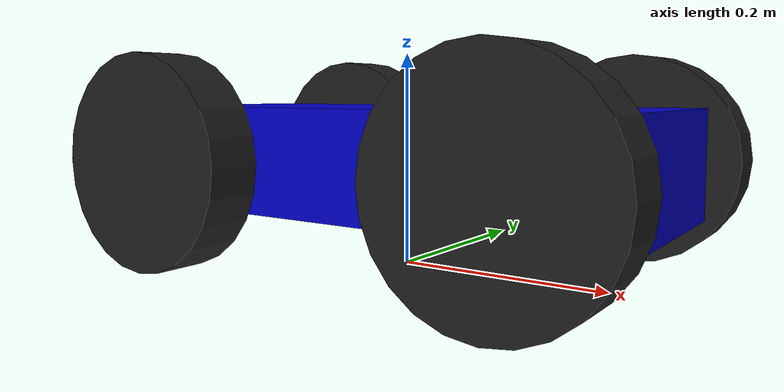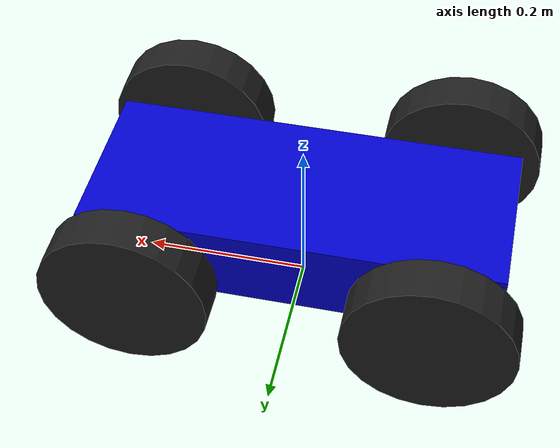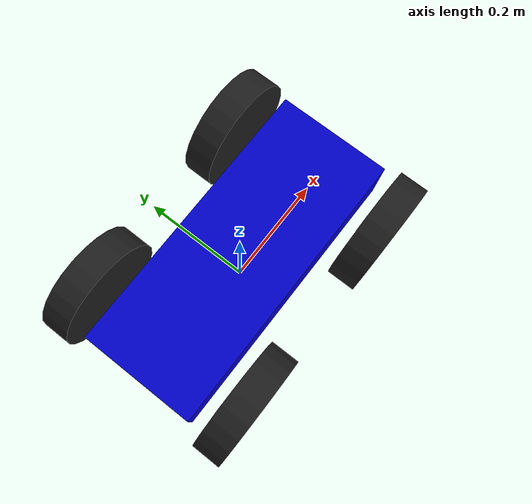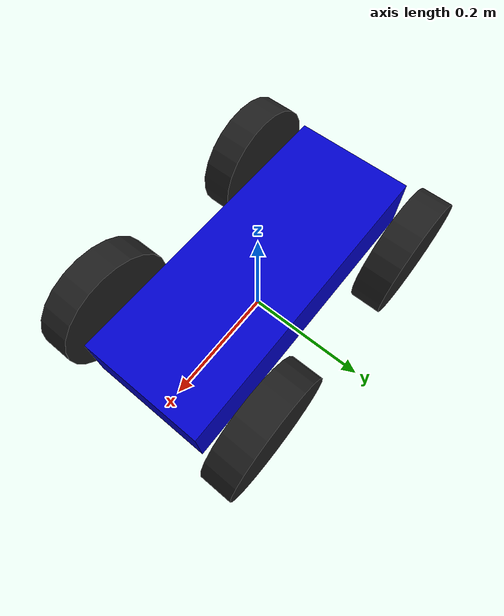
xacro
<?xml version="1.0"?>
<robot name="ackermann_car" xmlns:xacro="http://www.ros.org/wiki/xacro">

  <!-- ================= 参数定义 ================= -->
  <xacro:property name="wheel_radius" value="0.1" />
  <xacro:property name="wheel_width" value="0.05" />
  <xacro:property name="wheel_base" value="0.35" /> <!-- 前后轴距 -->
  <xacro:property name="wheel_track" value="0.3" />  <!-- 左右轮距 -->
  <xacro:property name="base_mass" value="5.0" />

  <!-- 惯性矩阵宏：圆柱体 -->
  <xacro:macro name="cylinder_inertia" params="m r h">
    <inertial>
      <mass value="${m}"/>
      <inertia ixx="${m*(3*r*r+h*h)/12}" ixy="0" ixz="0"
               iyy="${m*(3*r*r+h*h)/12}" iyz="0"
               izz="${m*r*r/2}"/>
    </inertial>
  </xacro:macro>

  <!-- ================= 核心链路 ================= -->

  <!-- 0. 虚拟根节点 (消除KDL警告) -->
  <link name="base_footprint"/>

  <joint name="base_joint" type="fixed">
    <parent link="base_footprint"/>
    <child link="base_link"/>
    <origin xyz="0 0 ${wheel_radius}" rpy="0 0 0"/>
  </joint>

  <!-- 1. 车身 -->
  <link name="base_link">
    <visual>
      <geometry><box size="0.5 0.2 0.1"/></geometry>
      <material name="blue"><color rgba="0 0 0.8 1"/></material>
    </visual>
    <collision>
      <geometry><box size="0.5 0.2 0.1"/></geometry>
    </collision>
    <inertial>
      <mass value="${base_mass}"/>
      <inertia ixx="0.02" ixy="0" ixz="0" iyy="0.1" iyz="0" izz="0.1"/>
    </inertial>
  </link>

  <!-- 2. 后轮宏 (驱动轮) -->
  <xacro:macro name="rear_wheel" params="name y_reflect">
    <link name="rear_${name}_wheel">
      <visual>
        <origin rpy="1.5708 0 0" xyz="0 0 0"/>
        <geometry><cylinder radius="${wheel_radius}" length="${wheel_width}"/></geometry>
      </visual>
      <collision>
        <origin rpy="1.5708 0 0" xyz="0 0 0"/>
        <geometry><cylinder radius="${wheel_radius}" length="${wheel_width}"/></geometry>
      </collision>
      <xacro:cylinder_inertia m="0.5" r="${wheel_radius}" h="${wheel_width}"/>
    </link>

    <joint name="rear_${name}_wheel_joint" type="continuous">
      <parent link="base_link"/>
      <child link="rear_${name}_wheel"/>
      <origin xyz="-0.175 ${y_reflect * wheel_track/2} 0" rpy="0 0 0"/>
      <axis xyz="0 1 0"/>
    </joint>

    <gazebo reference="rear_${name}_wheel">
      <mu1>1.0</mu1>
      <mu2>1.0</mu2>
      <material>Gazebo/Black</material>
    </gazebo>
  </xacro:macro>

  <xacro:rear_wheel name="left" y_reflect="1"/>
  <xacro:rear_wheel name="right" y_reflect="-1"/>

  <!-- 3. 前轮宏 (转向轮) -->
  <xacro:macro name="front_wheel" params="name y_reflect">
    <!-- 转向节 -->
    <link name="front_${name}_steer">
      <inertial>
        <mass value="0.2"/>
        <inertia ixx="0.001" ixy="0" ixz="0" iyy="0.001" iyz="0" izz="0.001"/>
      </inertial>
    </link>

    <joint name="front_${name}_steer_joint" type="revolute">
      <parent link="base_link"/>
      <child link="front_${name}_steer"/>
      <origin xyz="0.175 ${y_reflect * wheel_track/2} 0" rpy="0 0 0"/>
      <axis xyz="0 0 1"/>
      <limit lower="-0.6" upper="0.6" effort="50" velocity="5.0"/>
    </joint>

    <!-- 轮子本体 -->
    <link name="front_${name}_wheel">
      <visual>
        <origin rpy="1.5708 0 0" xyz="0 0 0"/>
        <geometry><cylinder radius="${wheel_radius}" length="${wheel_width}"/></geometry>
      </visual>
      <collision>
        <origin rpy="1.5708 0 0" xyz="0 0 0"/>
        <geometry><cylinder radius="${wheel_radius}" length="${wheel_width}"/></geometry>
      </collision>
      <xacro:cylinder_inertia m="0.5" r="${wheel_radius}" h="${wheel_width}"/>
    </link>

    <joint name="front_${name}_wheel_joint" type="continuous">
      <parent link="front_${name}_steer"/>
      <child link="front_${name}_wheel"/>
      <axis xyz="0 1 0"/>
    </joint>

    <gazebo reference="front_${name}_wheel">
      <mu1>1.0</mu1>
      <mu2>1.0</mu2>
      <material>Gazebo/Black</material>
    </gazebo>
  </xacro:macro>

  <xacro:front_wheel name="left" y_reflect="1"/>
  <xacro:front_wheel name="right" y_reflect="-1"/>

  <!-- ================= 驱动插件 (Tricycle Drive) ================= -->
  <!--
    该插件在Gazebo中模拟转向+驱动。虽然叫Tricycle，但可以通过配置Joints适配四轮阿克曼结构。
  -->
  <gazebo>
    <plugin name="tricycle_drive" filename="libgazebo_ros_tricycle_drive.so">
      <rosDebugLevel>Debug</rosDebugLevel>
      <robotNamespace>/</robotNamespace>
      <publishWheelTF>false</publishWheelTF>
      <publishWheelJointState>true</publishWheelJointState>

      <!-- 控制参数 -->
      <steeringJoint>front_left_steer_joint</steeringJoint>
      <actuatedWheelJoint>rear_left_wheel_joint</actuatedWheelJoint>

      <wheelSeparation>${wheel_track}</wheelSeparation>
      <wheelDiameter>${2*wheel_radius}</wheelDiameter>

      <wheelAcceleration>2.0</wheelAcceleration>
      <wheelTorque>50.0</wheelTorque>

      <commandTopic>cmd_vel</commandTopic>
      <odometryTopic>odom</odometryTopic>
      <odometryFrame>odom</odometryFrame>
      <robotBaseFrame>base_footprint</robotBaseFrame>
    </plugin>
  </gazebo>

</robot>
